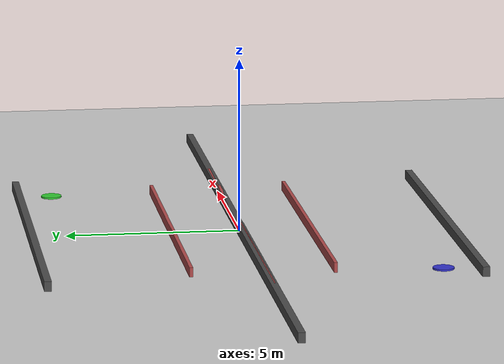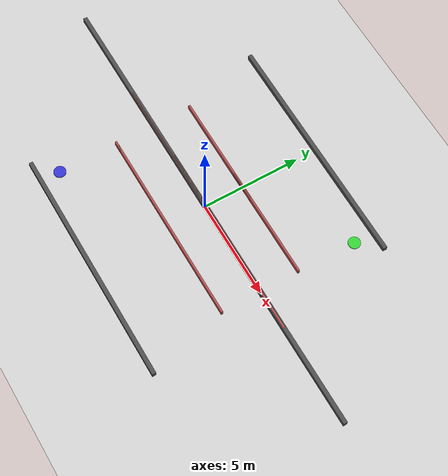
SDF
<?xml version="1.0" ?>
<sdf version="1.6">
  <world name="maze">
    <physics type="ode">
      <max_step_size>0.001</max_step_size>
      <real_time_factor>1</real_time_factor>
    </physics>
    <include>
      <uri>model://sun</uri>
    </include>
    <include>
      <uri>model://ground_plane</uri>
    </include>
    <model name="wall_north">
      <pose>0 6.0 0.0 0 0 0</pose>
      <static>true</static>
      <link name="link">
        <collision name="collision">
          <geometry>
            <box>
              <size>12.0 0.2 0.5</size>
            </box>
          </geometry>
        </collision>
        <visual name="visual">
          <geometry>
            <box>
              <size>12.0 0.2 0.5</size>
            </box>
          </geometry>
          <material>
            <diffuse>0.3 0.3 0.3 1</diffuse>
          </material>
        </visual>
      </link>
    </model>
    <model name="wall_south">
      <pose>0 -6.0 0.0 0 0 0</pose>
      <static>true</static>
      <link name="link">
        <collision name="collision">
          <geometry>
            <box>
              <size>12.0 0.2 0.5</size>
            </box>
          </geometry>
        </collision>
        <visual name="visual">
          <geometry>
            <box>
              <size>12.0 0.2 0.5</size>
            </box>
          </geometry>
          <material>
            <diffuse>0.3 0.3 0.3 1</diffuse>
          </material>
        </visual>
      </link>
    </model>
    <model name="wall_east">
      <pose>6.0 0 0.0 0 0 1.57</pose>
      <static>true</static>
      <link name="link">
        <collision name="collision">
          <geometry>
            <box>
              <size>0.2 12.0 0.5</size>
            </box>
          </geometry>
        </collision>
        <visual name="visual">
          <geometry>
            <box>
              <size>0.2 12.0 0.5</size>
            </box>
          </geometry>
          <material>
            <diffuse>0.3 0.3 0.3 1</diffuse>
          </material>
        </visual>
      </link>
    </model>
    <model name="wall_west">
      <pose>-6.0 0 0.0 0 0 1.57</pose>
      <static>true</static>
      <link name="link">
        <collision name="collision">
          <geometry>
            <box>
              <size>0.2 12.0 0.5</size>
            </box>
          </geometry>
        </collision>
        <visual name="visual">
          <geometry>
            <box>
              <size>0.2 12.0 0.5</size>
            </box>
          </geometry>
          <material>
            <diffuse>0.3 0.3 0.3 1</diffuse>
          </material>
        </visual>
      </link>
    </model>
    <model name="wall_4">
      <pose>-2.0 0.0 0.0 0 0 1.57</pose>
      <static>true</static>
      <link name="link">
        <collision name="collision">
          <geometry>
            <box>
              <size>0.1 10.0 0.5</size>
            </box>
          </geometry>
        </collision>
        <visual name="visual">
          <geometry>
            <box>
              <size>0.1 10.0 0.5</size>
            </box>
          </geometry>
          <material>
            <diffuse>0.7 0.3 0.3 1</diffuse>
          </material>
        </visual>
      </link>
    </model>
    <model name="wall_5">
      <pose>2.0 0.0 0.0 0 0 1.57</pose>
      <static>true</static>
      <link name="link">
        <collision name="collision">
          <geometry>
            <box>
              <size>0.1 10.0 0.5</size>
            </box>
          </geometry>
        </collision>
        <visual name="visual">
          <geometry>
            <box>
              <size>0.1 10.0 0.5</size>
            </box>
          </geometry>
          <material>
            <diffuse>0.7 0.3 0.3 1</diffuse>
          </material>
        </visual>
      </link>
    </model>
    <model name="wall_6">
      <pose>0.0 -2.0 0.0 0 0 0</pose>
      <static>true</static>
      <link name="link">
        <collision name="collision">
          <geometry>
            <box>
              <size>10.0 0.1 0.5</size>
            </box>
          </geometry>
        </collision>
        <visual name="visual">
          <geometry>
            <box>
              <size>10.0 0.1 0.5</size>
            </box>
          </geometry>
          <material>
            <diffuse>0.7 0.3 0.3 1</diffuse>
          </material>
        </visual>
      </link>
    </model>
    <model name="wall_7">
      <pose>0.0 2.0 0.0 0 0 0</pose>
      <static>true</static>
      <link name="link">
        <collision name="collision">
          <geometry>
            <box>
              <size>10.0 0.1 0.5</size>
            </box>
          </geometry>
        </collision>
        <visual name="visual">
          <geometry>
            <box>
              <size>10.0 0.1 0.5</size>
            </box>
          </geometry>
          <material>
            <diffuse>0.7 0.3 0.3 1</diffuse>
          </material>
        </visual>
      </link>
    </model>
    <model name="wall_8">
      <pose>-4.0 -2.0 0.0 0 0 0</pose>
      <static>true</static>
      <link name="link">
        <collision name="collision">
          <geometry>
            <box>
              <size>1.5 0.1 0.5</size>
            </box>
          </geometry>
        </collision>
        <visual name="visual">
          <geometry>
            <box>
              <size>1.5 0.1 0.5</size>
            </box>
          </geometry>
          <material>
            <diffuse>0.7 0.3 0.3 1</diffuse>
          </material>
        </visual>
      </link>
    </model>
    <model name="wall_9">
      <pose>0.0 2.0 0.0 0 0 0</pose>
      <static>true</static>
      <link name="link">
        <collision name="collision">
          <geometry>
            <box>
              <size>1.5 0.1 0.5</size>
            </box>
          </geometry>
        </collision>
        <visual name="visual">
          <geometry>
            <box>
              <size>1.5 0.1 0.5</size>
            </box>
          </geometry>
          <material>
            <diffuse>0.7 0.3 0.3 1</diffuse>
          </material>
        </visual>
      </link>
    </model>
    <model name="wall_10">
      <pose>4.0 0.0 0.0 0 0 1.57</pose>
      <static>true</static>
      <link name="link">
        <collision name="collision">
          <geometry>
            <box>
              <size>0.1 1.5 0.5</size>
            </box>
          </geometry>
        </collision>
        <visual name="visual">
          <geometry>
            <box>
              <size>0.1 1.5 0.5</size>
            </box>
          </geometry>
          <material>
            <diffuse>0.7 0.3 0.3 1</diffuse>
          </material>
        </visual>
      </link>
    </model>
    <model name="start">
      <pose>-5.0 -5.0 0.0 0 0 0</pose>
      <static>true</static>
      <link name="link">
        <collision name="collision">
          <geometry>
            <cylinder>
              <radius>0.3</radius>
              <length>0.05</length>
            </cylinder>
          </geometry>
        </collision>
        <visual name="visual">
          <geometry>
            <cylinder>
              <radius>0.3</radius>
              <length>0.05</length>
            </cylinder>
          </geometry>
          <material>
            <diffuse>0.2 0.2 0.8 1</diffuse>
          </material>
        </visual>
      </link>
    </model>
    <model name="goal">
      <pose>5.0 5.0 0.0 0 0 0</pose>
      <static>true</static>
      <link name="link">
        <collision name="collision">
          <geometry>
            <cylinder>
              <radius>0.3</radius>
              <length>0.05</length>
            </cylinder>
          </geometry>
        </collision>
        <visual name="visual">
          <geometry>
            <cylinder>
              <radius>0.3</radius>
              <length>0.05</length>
            </cylinder>
          </geometry>
          <material>
            <diffuse>0.2 0.8 0.2 1</diffuse>
          </material>
        </visual>
      </link>
    </model>
  </world>
</sdf>
